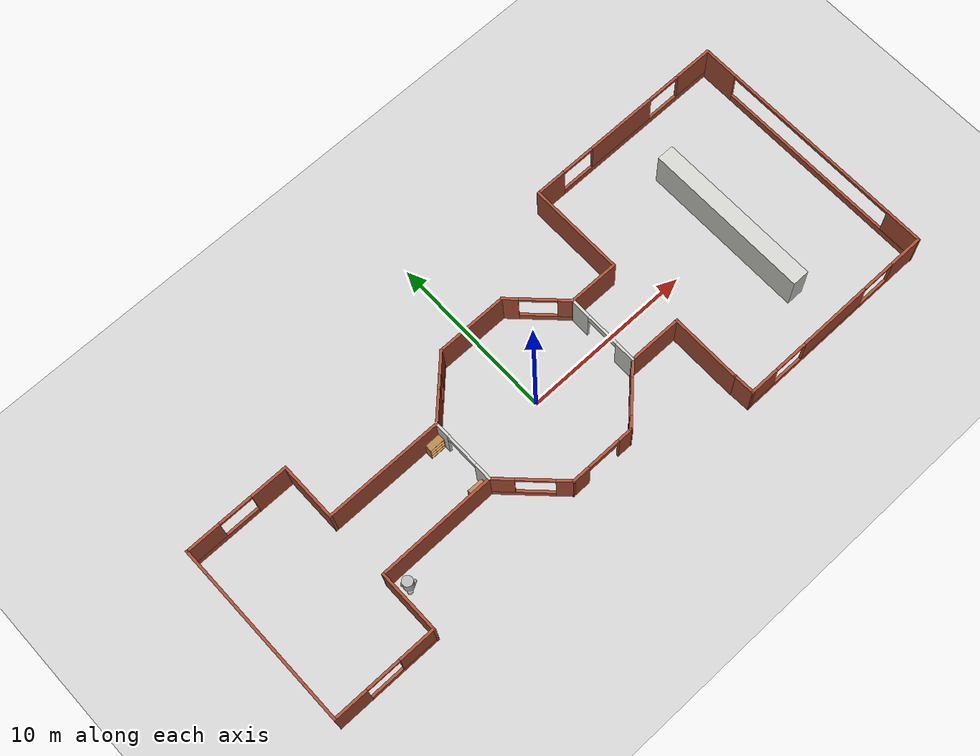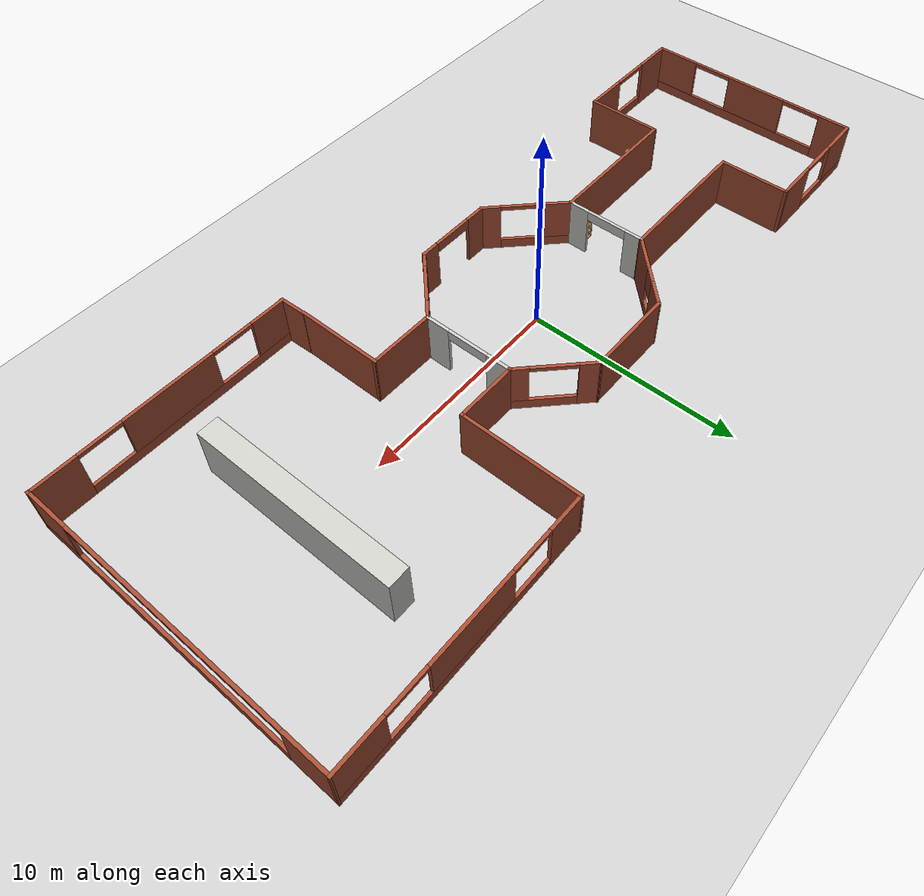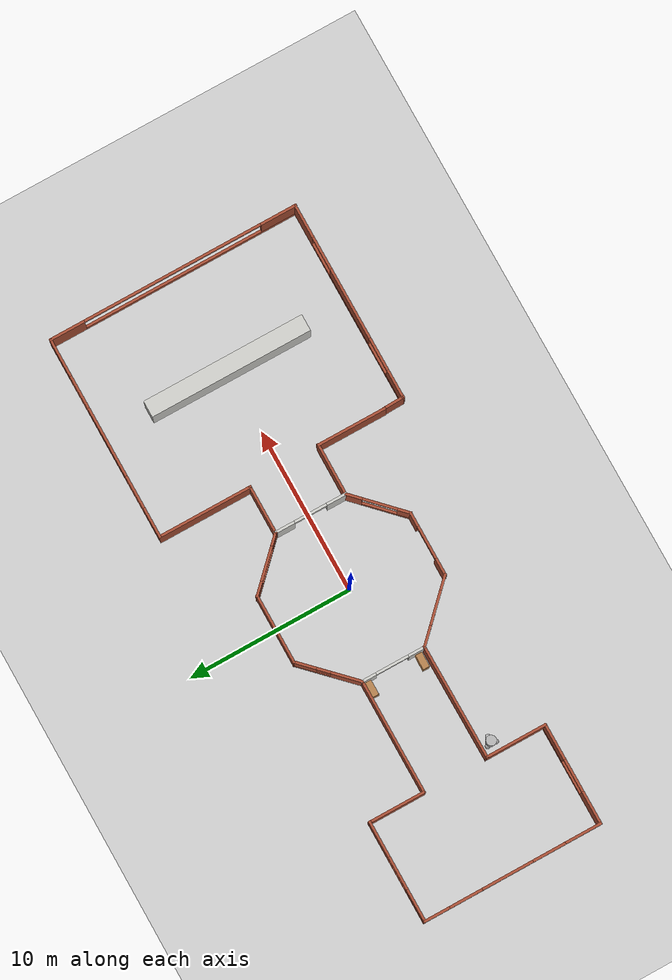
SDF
<sdf version="1.7">
 <world name="default">
  <model name="ground_plane">
   <static>1</static>
   <link name="link">
    <collision name="collision">
     <geometry><plane><normal>0 0 1</normal><size>100 100</size></plane></geometry>
     <surface>
      <contact><collide_bitmask>65535</collide_bitmask></contact>
      <friction><ode><mu>100</mu><mu2>50</mu2></ode></friction>
     </surface>
    </collision>
    <visual name="visual">
     <cast_shadows>0</cast_shadows>
     <geometry><plane><normal>0 0 1</normal><size>100 100</size></plane></geometry>
     <material>
      <script><uri>file://media/materials/scripts/gazebo.material</uri><name>Gazebo/Grey</name></script>
     </material>
    </visual>
   </link>
  </model>
  <model name="Building">
   <pose>0.97548 0.086058 0 0 -0 0</pose>
   <link name="Wall_10">
    <pose>2.24078 -3.60079 0 0 0 -2.36445</pose>
    <visual name="Wall_10_Visual_0">
     <pose>-1.40328 0 1.25 0 -0 0</pose>
     <geometry><box><size>1.01679 0.15 2.5</size></box></geometry>
     <material>
      <script><uri>file://media/materials/scripts/gazebo.material</uri><name>Gazebo/Bricks</name></script>
      <ambient>0.760784 0.662745 0.627451 1</ambient>
     </material>
     <meta><layer>0</layer></meta>
    </visual>
    <collision name="Wall_10_Collision_0">
     <geometry><box><size>1.01679 0.15 2.5</size></box></geometry>
     <pose>-1.40328 0 1.25 0 -0 0</pose>
    </collision>
    <visual name="Wall_10_Visual_1">
     <pose>0.508396 0 0.25 0 -0 0</pose>
     <geometry><box><size>2.80656 0.15 0.5</size></box></geometry>
     <material>
      <script><uri>file://media/materials/scripts/gazebo.material</uri><name>Gazebo/Bricks</name></script>
      <ambient>0.760784 0.662745 0.627451 1</ambient>
     </material>
     <meta><layer>0</layer></meta>
    </visual>
    <collision name="Wall_10_Collision_1">
     <geometry><box><size>2.80656 0.15 0.5</size></box></geometry>
     <pose>0.508396 0 0.25 0 -0 0</pose>
    </collision>
    <visual name="Wall_10_Visual_2">
     <pose>1.5084 0 1.5 0 -0 0</pose>
     <geometry><box><size>0.806556 0.15 2</size></box></geometry>
     <material>
      <script><uri>file://media/materials/scripts/gazebo.material</uri><name>Gazebo/Bricks</name></script>
      <ambient>0.760784 0.662745 0.627451 1</ambient>
     </material>
     <meta><layer>0</layer></meta>
    </visual>
    <collision name="Wall_10_Collision_2">
     <geometry><box><size>0.806556 0.15 2</size></box></geometry>
     <pose>1.5084 0 1.5 0 -0 0</pose>
    </collision>
    <visual name="Wall_10_Visual_3">
     <pose>0.105118 0 2.4 0 -0 0</pose>
     <geometry><box><size>2 0.15 0.2</size></box></geometry>
     <material>
      <script><uri>file://media/materials/scripts/gazebo.material</uri><name>Gazebo/Bricks</name></script>
      <ambient>0.760784 0.662745 0.627451 1</ambient>
     </material>
     <meta><layer>0</layer></meta>
    </visual>
    <collision name="Wall_10_Collision_3">
     <geometry><box><size>2 0.15 0.2</size></box></geometry>
     <pose>0.105118 0 2.4 0 -0 0</pose>
    </collision>
   </link>
   <link name="Wall_12">
    <collision name="Wall_12_Collision">
     <geometry><box><size>7 0.15 2.5</size></box></geometry>
     <pose>0 0 1.25 0 -0 0</pose>
    </collision>
    <visual name="Wall_12_Visual">
     <pose>0 0 1.25 0 -0 0</pose>
     <geometry><box><size>7 0.15 2.5</size></box></geometry>
     <material>
      <script><uri>file://media/materials/scripts/gazebo.material</uri><name>Gazebo/Bricks</name></script>
      <ambient>0.760784 0.662745 0.627451 1</ambient>
     </material>
     <meta><layer>0</layer></meta>
    </visual>
    <pose>-9.24276 1.86039 0 0 -0 3.14159</pose>
   </link>
   <link name="Wall_13">
    <collision name="Wall_13_Collision">
     <geometry><box><size>3.5 0.15 2.5</size></box></geometry>
     <pose>0 0 1.25 0 -0 0</pose>
    </collision>
    <visual name="Wall_13_Visual">
     <pose>0 0 1.25 0 -0 0</pose>
     <geometry><box><size>3.5 0.15 2.5</size></box></geometry>
     <material>
      <script><uri>file://media/materials/scripts/gazebo.material</uri><name>Gazebo/Bricks</name></script>
      <ambient>0.760784 0.662745 0.627451 1</ambient>
     </material>
     <meta><layer>0</layer></meta>
    </visual>
    <pose>-12.6678 3.53539 0 0 -0 1.5708</pose>
   </link>
   <link name="Wall_14">
    <pose>-15.7178 5.21039 0 0 -0 3.14159</pose>
    <visual name="Wall_14_Visual_0">
     <pose>-2.01865 0 1.25 0 -0 0</pose>
     <geometry><box><size>2.2127 0.15 2.5</size></box></geometry>
     <material>
      <script><uri>file://media/materials/scripts/gazebo.material</uri><name>Gazebo/Bricks</name></script>
      <ambient>0.760784 0.662745 0.627451 1</ambient>
     </material>
     <meta><layer>0</layer></meta>
    </visual>
    <collision name="Wall_14_Collision_0">
     <geometry><box><size>2.2127 0.15 2.5</size></box></geometry>
     <pose>-2.01865 0 1.25 0 -0 0</pose>
    </collision>
    <visual name="Wall_14_Visual_1">
     <pose>1.10635 0 0.25 0 -0 0</pose>
     <geometry><box><size>4.0373 0.15 0.5</size></box></geometry>
     <material>
      <script><uri>file://media/materials/scripts/gazebo.material</uri><name>Gazebo/Bricks</name></script>
      <ambient>0.760784 0.662745 0.627451 1</ambient>
     </material>
     <meta><layer>0</layer></meta>
    </visual>
    <collision name="Wall_14_Collision_1">
     <geometry><box><size>4.0373 0.15 0.5</size></box></geometry>
     <pose>1.10635 0 0.25 0 -0 0</pose>
    </collision>
    <visual name="Wall_14_Visual_2">
     <pose>2.10635 0 1.5 0 -0 0</pose>
     <geometry><box><size>2.0373 0.15 2</size></box></geometry>
     <material>
      <script><uri>file://media/materials/scripts/gazebo.material</uri><name>Gazebo/Bricks</name></script>
      <ambient>0.760784 0.662745 0.627451 1</ambient>
     </material>
     <meta><layer>0</layer></meta>
    </visual>
    <collision name="Wall_14_Collision_2">
     <geometry><box><size>2.0373 0.15 2</size></box></geometry>
     <pose>2.10635 0 1.5 0 -0 0</pose>
    </collision>
    <visual name="Wall_14_Visual_3">
     <pose>0.0877 0 2.4 0 -0 0</pose>
     <geometry><box><size>2 0.15 0.2</size></box></geometry>
     <material>
      <script><uri>file://media/materials/scripts/gazebo.material</uri><name>Gazebo/Bricks</name></script>
      <ambient>0.760784 0.662745 0.627451 1</ambient>
     </material>
     <meta><layer>0</layer></meta>
    </visual>
    <collision name="Wall_14_Collision_3">
     <geometry><box><size>2 0.15 0.2</size></box></geometry>
     <pose>0.0877 0 2.4 0 -0 0</pose>
    </collision>
   </link>
   <link name="Wall_15">
    <pose>-18.7678 -0.214607 0 0 0 -1.5708</pose>
    <visual name="Wall_15_Visual_0">
     <pose>-4.69879 0 1.25 0 -0 0</pose>
     <geometry><box><size>1.60243 0.15 2.5</size></box></geometry>
     <material>
      <script><uri>file://media/materials/scripts/gazebo.material</uri><name>Gazebo/Bricks</name></script>
      <ambient>0.760784 0.662745 0.627451 1</ambient>
     </material>
     <meta><layer>0</layer></meta>
    </visual>
    <collision name="Wall_15_Collision_0">
     <geometry><box><size>1.60243 0.15 2.5</size></box></geometry>
     <pose>-4.69879 0 1.25 0 -0 0</pose>
    </collision>
    <visual name="Wall_15_Visual_1">
     <pose>0.801214 0 0.25 0 -0 0</pose>
     <geometry><box><size>9.39757 0.15 0.5</size></box></geometry>
     <material>
      <script><uri>file://media/materials/scripts/gazebo.material</uri><name>Gazebo/Bricks</name></script>
      <ambient>0.760784 0.662745 0.627451 1</ambient>
     </material>
     <meta><layer>0</layer></meta>
    </visual>
    <collision name="Wall_15_Collision_1">
     <geometry><box><size>9.39757 0.15 0.5</size></box></geometry>
     <pose>0.801214 0 0.25 0 -0 0</pose>
    </collision>
    <visual name="Wall_15_Visual_2">
     <pose>-0.326532 0 1.5 0 -0 0</pose>
     <geometry><box><size>3.14208 0.15 2</size></box></geometry>
     <material>
      <script><uri>file://media/materials/scripts/gazebo.material</uri><name>Gazebo/Bricks</name></script>
      <ambient>0.760784 0.662745 0.627451 1</ambient>
     </material>
     <meta><layer>0</layer></meta>
    </visual>
    <collision name="Wall_15_Collision_2">
     <geometry><box><size>3.14208 0.15 2</size></box></geometry>
     <pose>-0.326532 0 1.5 0 -0 0</pose>
    </collision>
    <visual name="Wall_15_Visual_3">
     <pose>4.37225 0 1.5 0 -0 0</pose>
     <geometry><box><size>2.25549 0.15 2</size></box></geometry>
     <material>
      <script><uri>file://media/materials/scripts/gazebo.material</uri><name>Gazebo/Bricks</name></script>
      <ambient>0.760784 0.662745 0.627451 1</ambient>
     </material>
     <meta><layer>0</layer></meta>
    </visual>
    <collision name="Wall_15_Collision_3">
     <geometry><box><size>2.25549 0.15 2</size></box></geometry>
     <pose>4.37225 0 1.5 0 -0 0</pose>
    </collision>
    <visual name="Wall_15_Visual_4">
     <pose>-2.89757 0 2.4 0 -0 0</pose>
     <geometry><box><size>2 0.15 0.2</size></box></geometry>
     <material>
      <script><uri>file://media/materials/scripts/gazebo.material</uri><name>Gazebo/Bricks</name></script>
      <ambient>0.760784 0.662745 0.627451 1</ambient>
     </material>
     <meta><layer>0</layer></meta>
    </visual>
    <collision name="Wall_15_Collision_4">
     <geometry><box><size>2 0.15 0.2</size></box></geometry>
     <pose>-2.89757 0 2.4 0 -0 0</pose>
    </collision>
    <visual name="Wall_15_Visual_5">
     <pose>2.24451 0 2.4 0 -0 0</pose>
     <geometry><box><size>2 0.15 0.2</size></box></geometry>
     <material>
      <script><uri>file://media/materials/scripts/gazebo.material</uri><name>Gazebo/Bricks</name></script>
      <ambient>0.760784 0.662745 0.627451 1</ambient>
     </material>
     <meta><layer>0</layer></meta>
    </visual>
    <collision name="Wall_15_Collision_5">
     <geometry><box><size>2 0.15 0.2</size></box></geometry>
     <pose>2.24451 0 2.4 0 -0 0</pose>
    </collision>
   </link>
   <link name="Wall_16">
    <pose>-15.7178 -5.63961 0 0 -0 0</pose>
    <visual name="Wall_16_Visual_0">
     <pose>-2.10635 0 1.25 0 -0 0</pose>
     <geometry><box><size>2.0373 0.15 2.5</size></box></geometry>
     <material>
      <script><uri>file://media/materials/scripts/gazebo.material</uri><name>Gazebo/Bricks</name></script>
      <ambient>0.760784 0.662745 0.627451 1</ambient>
     </material>
     <meta><layer>0</layer></meta>
    </visual>
    <collision name="Wall_16_Collision_0">
     <geometry><box><size>2.0373 0.15 2.5</size></box></geometry>
     <pose>-2.10635 0 1.25 0 -0 0</pose>
    </collision>
    <visual name="Wall_16_Visual_1">
     <pose>1.01865 0 0.25 0 -0 0</pose>
     <geometry><box><size>4.2127 0.15 0.5</size></box></geometry>
     <material>
      <script><uri>file://media/materials/scripts/gazebo.material</uri><name>Gazebo/Bricks</name></script>
      <ambient>0.760784 0.662745 0.627451 1</ambient>
     </material>
     <meta><layer>0</layer></meta>
    </visual>
    <collision name="Wall_16_Collision_1">
     <geometry><box><size>4.2127 0.15 0.5</size></box></geometry>
     <pose>1.01865 0 0.25 0 -0 0</pose>
    </collision>
    <visual name="Wall_16_Visual_2">
     <pose>2.01865 0 1.5 0 -0 0</pose>
     <geometry><box><size>2.2127 0.15 2</size></box></geometry>
     <material>
      <script><uri>file://media/materials/scripts/gazebo.material</uri><name>Gazebo/Bricks</name></script>
      <ambient>0.760784 0.662745 0.627451 1</ambient>
     </material>
     <meta><layer>0</layer></meta>
    </visual>
    <collision name="Wall_16_Collision_2">
     <geometry><box><size>2.2127 0.15 2</size></box></geometry>
     <pose>2.01865 0 1.5 0 -0 0</pose>
    </collision>
    <visual name="Wall_16_Visual_3">
     <pose>-0.0877 0 2.4 0 -0 0</pose>
     <geometry><box><size>2 0.15 0.2</size></box></geometry>
     <material>
      <script><uri>file://media/materials/scripts/gazebo.material</uri><name>Gazebo/Bricks</name></script>
      <ambient>0.760784 0.662745 0.627451 1</ambient>
     </material>
     <meta><layer>0</layer></meta>
    </visual>
    <collision name="Wall_16_Collision_3">
     <geometry><box><size>2 0.15 0.2</size></box></geometry>
     <pose>-0.0877 0 2.4 0 -0 0</pose>
    </collision>
   </link>
   <link name="Wall_17">
    <collision name="Wall_17_Collision">
     <geometry><box><size>3.75 0.15 2.5</size></box></geometry>
     <pose>0 0 1.25 0 -0 0</pose>
    </collision>
    <visual name="Wall_17_Visual">
     <pose>0 0 1.25 0 -0 0</pose>
     <geometry><box><size>3.75 0.15 2.5</size></box></geometry>
     <material>
      <script><uri>file://media/materials/scripts/gazebo.material</uri><name>Gazebo/Bricks</name></script>
      <ambient>0.760784 0.662745 0.627451 1</ambient>
     </material>
     <meta><layer>0</layer></meta>
    </visual>
    <pose>-12.6678 -3.83961 0 0 -0 1.5708</pose>
   </link>
   <link name="Wall_18">
    <collision name="Wall_18_Collision">
     <geometry><box><size>7.00018 0.15 2.5</size></box></geometry>
     <pose>0 0 1.25 0 -0 0</pose>
    </collision>
    <visual name="Wall_18_Visual">
     <pose>0 0 1.25 0 -0 0</pose>
     <geometry><box><size>7.00018 0.15 2.5</size></box></geometry>
     <material>
      <script><uri>file://media/materials/scripts/gazebo.material</uri><name>Gazebo/Bricks</name></script>
      <ambient>0.760784 0.662745 0.627451 1</ambient>
     </material>
     <meta><layer>0</layer></meta>
    </visual>
    <pose>-9.24276 -2.01461 0 0 -0 0.007299</pose>
   </link>
   <link name="Wall_20">
    <collision name="Wall_20_Collision">
     <geometry><box><size>3 0.15 2.5</size></box></geometry>
     <pose>0 0 1.25 0 -0 0</pose>
    </collision>
    <visual name="Wall_20_Visual">
     <pose>0 0 1.25 0 -0 0</pose>
     <geometry><box><size>3 0.15 2.5</size></box></geometry>
     <material>
      <script><uri>file://media/materials/scripts/gazebo.material</uri><name>Gazebo/Bricks</name></script>
      <ambient>0.760784 0.662745 0.627451 1</ambient>
     </material>
     <meta><layer>0</layer></meta>
    </visual>
    <pose>4.97519 2.03717 0 0 -0 0</pose>
   </link>
   <link name="Wall_21">
    <collision name="Wall_21_Collision">
     <geometry><box><size>5.75 0.15 2.5</size></box></geometry>
     <pose>0 0 1.25 0 -0 0</pose>
    </collision>
    <visual name="Wall_21_Visual">
     <pose>0 0 1.25 0 -0 0</pose>
     <geometry><box><size>5.75 0.15 2.5</size></box></geometry>
     <material>
      <script><uri>file://media/materials/scripts/gazebo.material</uri><name>Gazebo/Bricks</name></script>
      <ambient>0.760784 0.662745 0.627451 1</ambient>
     </material>
     <meta><layer>0</layer></meta>
    </visual>
    <pose>6.40019 4.83717 0 0 -0 1.5708</pose>
   </link>
   <link name="Wall_22">
    <pose>12.5752 7.63717 0 0 -0 0</pose>
    <visual name="Wall_22_Visual_0">
     <pose>-5.31867 0 1.25 0 -0 0</pose>
     <geometry><box><size>1.86265 0.15 2.5</size></box></geometry>
     <material>
      <script><uri>file://media/materials/scripts/gazebo.material</uri><name>Gazebo/Bricks</name></script>
      <ambient>0.760784 0.662745 0.627451 1</ambient>
     </material>
     <meta><layer>0</layer></meta>
    </visual>
    <collision name="Wall_22_Collision_0">
     <geometry><box><size>1.86265 0.15 2.5</size></box></geometry>
     <pose>-5.31867 0 1.25 0 -0 0</pose>
    </collision>
    <visual name="Wall_22_Visual_1">
     <pose>0.931327 0 0.25 0 -0 0</pose>
     <geometry><box><size>10.6373 0.15 0.5</size></box></geometry>
     <material>
      <script><uri>file://media/materials/scripts/gazebo.material</uri><name>Gazebo/Bricks</name></script>
      <ambient>0.760784 0.662745 0.627451 1</ambient>
     </material>
     <meta><layer>0</layer></meta>
    </visual>
    <collision name="Wall_22_Collision_1">
     <geometry><box><size>10.6373 0.15 0.5</size></box></geometry>
     <pose>0.931327 0 0.25 0 -0 0</pose>
    </collision>
    <visual name="Wall_22_Visual_2">
     <pose>-0.256624 0 1.5 0 -0 0</pose>
     <geometry><box><size>4.26144 0.15 2</size></box></geometry>
     <material>
      <script><uri>file://media/materials/scripts/gazebo.material</uri><name>Gazebo/Bricks</name></script>
      <ambient>0.760784 0.662745 0.627451 1</ambient>
     </material>
     <meta><layer>0</layer></meta>
    </visual>
    <collision name="Wall_22_Collision_2">
     <geometry><box><size>4.26144 0.15 2</size></box></geometry>
     <pose>-0.256624 0 1.5 0 -0 0</pose>
    </collision>
    <visual name="Wall_22_Visual_3">
     <pose>5.06205 0 1.5 0 -0 0</pose>
     <geometry><box><size>2.3759 0.15 2</size></box></geometry>
     <material>
      <script><uri>file://media/materials/scripts/gazebo.material</uri><name>Gazebo/Bricks</name></script>
      <ambient>0.760784 0.662745 0.627451 1</ambient>
     </material>
     <meta><layer>0</layer></meta>
    </visual>
    <collision name="Wall_22_Collision_3">
     <geometry><box><size>2.3759 0.15 2</size></box></geometry>
     <pose>5.06205 0 1.5 0 -0 0</pose>
    </collision>
    <visual name="Wall_22_Visual_4">
     <pose>-3.38734 0 2.4 0 -0 0</pose>
     <geometry><box><size>2 0.15 0.2</size></box></geometry>
     <material>
      <script><uri>file://media/materials/scripts/gazebo.material</uri><name>Gazebo/Bricks</name></script>
      <ambient>0.760784 0.662745 0.627451 1</ambient>
     </material>
     <meta><layer>0</layer></meta>
    </visual>
    <collision name="Wall_22_Collision_4">
     <geometry><box><size>2 0.15 0.2</size></box></geometry>
     <pose>-3.38734 0 2.4 0 -0 0</pose>
    </collision>
    <visual name="Wall_22_Visual_5">
     <pose>2.8741 0 2.4 0 -0 0</pose>
     <geometry><box><size>2 0.15 0.2</size></box></geometry>
     <material>
      <script><uri>file://media/materials/scripts/gazebo.material</uri><name>Gazebo/Bricks</name></script>
      <ambient>0.760784 0.662745 0.627451 1</ambient>
     </material>
     <meta><layer>0</layer></meta>
    </visual>
    <collision name="Wall_22_Collision_5">
     <geometry><box><size>2 0.15 0.2</size></box></geometry>
     <pose>2.8741 0 2.4 0 -0 0</pose>
    </collision>
   </link>
   <link name="Wall_23">
    <pose>18.7589 0.001252 0 0 0 -1.56965</pose>
    <visual name="Wall_23_Visual_0">
     <pose>-6.62578 0 1.25 0 -0 0</pose>
     <geometry><box><size>2.17028 0.15 2.5</size></box></geometry>
     <material>
      <script><uri>file://media/materials/scripts/gazebo.material</uri><name>Gazebo/Bricks</name></script>
      <ambient>0.760784 0.662745 0.627451 1</ambient>
     </material>
     <meta><layer>0</layer></meta>
    </visual>
    <collision name="Wall_23_Collision_0">
     <geometry><box><size>2.17028 0.15 2.5</size></box></geometry>
     <pose>-6.62578 0 1.25 0 -0 0</pose>
    </collision>
    <visual name="Wall_23_Visual_1">
     <pose>1.08514 0 0.25 0 -0 0</pose>
     <geometry><box><size>13.2516 0.15 0.5</size></box></geometry>
     <material>
      <script><uri>file://media/materials/scripts/gazebo.material</uri><name>Gazebo/Bricks</name></script>
      <ambient>0.760784 0.662745 0.627451 1</ambient>
     </material>
     <meta><layer>0</layer></meta>
    </visual>
    <collision name="Wall_23_Collision_1">
     <geometry><box><size>13.2516 0.15 0.5</size></box></geometry>
     <pose>1.08514 0 0.25 0 -0 0</pose>
    </collision>
    <visual name="Wall_23_Visual_2">
     <pose>6.58514 0 1.5 0 -0 0</pose>
     <geometry><box><size>2.25156 0.15 2</size></box></geometry>
     <material>
      <script><uri>file://media/materials/scripts/gazebo.material</uri><name>Gazebo/Bricks</name></script>
      <ambient>0.760784 0.662745 0.627451 1</ambient>
     </material>
     <meta><layer>0</layer></meta>
    </visual>
    <collision name="Wall_23_Collision_2">
     <geometry><box><size>2.25156 0.15 2</size></box></geometry>
     <pose>6.58514 0 1.5 0 -0 0</pose>
    </collision>
    <visual name="Wall_23_Visual_3">
     <pose>-0.040637 0 2.4 0 -0 0</pose>
     <geometry><box><size>11 0.15 0.2</size></box></geometry>
     <material>
      <script><uri>file://media/materials/scripts/gazebo.material</uri><name>Gazebo/Bricks</name></script>
      <ambient>0.760784 0.662745 0.627451 1</ambient>
     </material>
     <meta><layer>0</layer></meta>
    </visual>
    <collision name="Wall_23_Collision_3">
     <geometry><box><size>11 0.15 0.2</size></box></geometry>
     <pose>-0.040637 0 2.4 0 -0 0</pose>
    </collision>
   </link>
   <link name="Wall_24">
    <pose>12.7177 -7.61717 0 0 -0 3.14159</pose>
    <visual name="Wall_24_Visual_0">
     <pose>-5.07697 0 1.25 0 -0 0</pose>
     <geometry><box><size>2.09606 0.15 2.5</size></box></geometry>
     <material>
      <script><uri>file://media/materials/scripts/gazebo.material</uri><name>Gazebo/Bricks</name></script>
      <ambient>0.760784 0.662745 0.627451 1</ambient>
     </material>
     <meta><layer>0</layer></meta>
    </visual>
    <collision name="Wall_24_Collision_0">
     <geometry><box><size>2.09606 0.15 2.5</size></box></geometry>
     <pose>-5.07697 0 1.25 0 -0 0</pose>
    </collision>
    <visual name="Wall_24_Visual_1">
     <pose>1.04803 0 0.25 0 -0 0</pose>
     <geometry><box><size>10.1539 0.15 0.5</size></box></geometry>
     <material>
      <script><uri>file://media/materials/scripts/gazebo.material</uri><name>Gazebo/Bricks</name></script>
      <ambient>0.760784 0.662745 0.627451 1</ambient>
     </material>
     <meta><layer>0</layer></meta>
    </visual>
    <collision name="Wall_24_Collision_1">
     <geometry><box><size>10.1539 0.15 0.5</size></box></geometry>
     <pose>1.04803 0 0.25 0 -0 0</pose>
    </collision>
    <visual name="Wall_24_Visual_2">
     <pose>0.154253 0 1.5 0 -0 0</pose>
     <geometry><box><size>4.36638 0.15 2</size></box></geometry>
     <material>
      <script><uri>file://media/materials/scripts/gazebo.material</uri><name>Gazebo/Bricks</name></script>
      <ambient>0.760784 0.662745 0.627451 1</ambient>
     </material>
     <meta><layer>0</layer></meta>
    </visual>
    <collision name="Wall_24_Collision_2">
     <geometry><box><size>4.36638 0.15 2</size></box></geometry>
     <pose>0.154253 0 1.5 0 -0 0</pose>
    </collision>
    <visual name="Wall_24_Visual_3">
     <pose>5.23122 0 1.5 0 -0 0</pose>
     <geometry><box><size>1.78756 0.15 2</size></box></geometry>
     <material>
      <script><uri>file://media/materials/scripts/gazebo.material</uri><name>Gazebo/Bricks</name></script>
      <ambient>0.760784 0.662745 0.627451 1</ambient>
     </material>
     <meta><layer>0</layer></meta>
    </visual>
    <collision name="Wall_24_Collision_3">
     <geometry><box><size>1.78756 0.15 2</size></box></geometry>
     <pose>5.23122 0 1.5 0 -0 0</pose>
    </collision>
    <visual name="Wall_24_Visual_4">
     <pose>-3.02894 0 2.4 0 -0 0</pose>
     <geometry><box><size>2 0.15 0.2</size></box></geometry>
     <material>
      <script><uri>file://media/materials/scripts/gazebo.material</uri><name>Gazebo/Bricks</name></script>
      <ambient>0.760784 0.662745 0.627451 1</ambient>
     </material>
     <meta><layer>0</layer></meta>
    </visual>
    <collision name="Wall_24_Collision_4">
     <geometry><box><size>2 0.15 0.2</size></box></geometry>
     <pose>-3.02894 0 2.4 0 -0 0</pose>
    </collision>
    <visual name="Wall_24_Visual_5">
     <pose>3.33745 0 2.4 0 -0 0</pose>
     <geometry><box><size>2 0.15 0.2</size></box></geometry>
     <material>
      <script><uri>file://media/materials/scripts/gazebo.material</uri><name>Gazebo/Bricks</name></script>
      <ambient>0.760784 0.662745 0.627451 1</ambient>
     </material>
     <meta><layer>0</layer></meta>
    </visual>
    <collision name="Wall_24_Collision_5">
     <geometry><box><size>2 0.15 0.2</size></box></geometry>
     <pose>3.33745 0 2.4 0 -0 0</pose>
    </collision>
   </link>
   <link name="Wall_25">
    <collision name="Wall_25_Collision">
     <geometry><box><size>1.35756 0.15 2.5</size></box></geometry>
     <pose>0 0 1.25 0 -0 0</pose>
    </collision>
    <visual name="Wall_25_Visual">
     <pose>0 0 1.25 0 -0 0</pose>
     <geometry><box><size>1.35756 0.15 2.5</size></box></geometry>
     <material>
      <script><uri>file://media/materials/scripts/gazebo.material</uri><name>Gazebo/Bricks</name></script>
      <ambient>1 1 1 1</ambient>
     </material>
     <meta><layer>0</layer></meta>
    </visual>
    <pose>6.64644 -7.03126 0 0 -0 1.60597</pose>
   </link>
   <link name="Wall_26">
    <collision name="Wall_26_Collision">
     <geometry><box><size>4.25 0.15 2.5</size></box></geometry>
     <pose>0 0 1.25 0 -0 0</pose>
    </collision>
    <visual name="Wall_26_Visual">
     <pose>0 0 1.25 0 -0 0</pose>
     <geometry><box><size>4.25 0.15 2.5</size></box></geometry>
     <material>
      <script><uri>file://media/materials/scripts/gazebo.material</uri><name>Gazebo/Bricks</name></script>
      <ambient>0.760784 0.662745 0.627451 1</ambient>
     </material>
     <meta><layer>0</layer></meta>
    </visual>
    <pose>6.60772 -4.37785 0 0 -0 1.5708</pose>
   </link>
   <link name="Wall_27">
    <collision name="Wall_27_Collision">
     <geometry><box><size>3.22506 0.15 2.5</size></box></geometry>
     <pose>0 0 1.25 0 -0 0</pose>
    </collision>
    <visual name="Wall_27_Visual">
     <pose>0 0 1.25 0 -0 0</pose>
     <geometry><box><size>3.22506 0.15 2.5</size></box></geometry>
     <material>
      <script><uri>file://media/materials/scripts/gazebo.material</uri><name>Gazebo/Bricks</name></script>
      <ambient>0.760784 0.662745 0.627451 1</ambient>
     </material>
     <meta><layer>0</layer></meta>
    </visual>
    <pose>5.0877 -2.32034 0 0 -0 3.13671</pose>
   </link>
   <link name="Wall_29">
    <collision name="Wall_29_Collision">
     <geometry><box><size>9.85029 1 2.5</size></box></geometry>
     <pose>0 0 1.25 0 -0 0</pose>
    </collision>
    <visual name="Wall_29_Visual">
     <pose>0 0 1.25 0 -0 0</pose>
     <geometry><box><size>9.85029 1 2.5</size></box></geometry>
     <material>
      <script><uri>file://media/materials/scripts/gazebo.material</uri><name>Gazebo/CeilingTiled</name></script>
      <ambient>1 1 1 1</ambient>
     </material>
     <meta><layer>0</layer></meta>
    </visual>
    <pose>12.8254 -0.080745 0 0 -0 1.5708</pose>
   </link>
   <link name="Wall_3">
    <pose>-0.993622 -4.88875 0 0 -0 3.14159</pose>
    <visual name="Wall_3_Visual_0">
     <pose>-1.54485 0 1.25 0 -0 0</pose>
     <geometry><box><size>0.910304 0.15 2.5</size></box></geometry>
     <material>
      <script><uri>file://media/materials/scripts/gazebo.material</uri><name>Gazebo/Bricks</name></script>
      <ambient>0.760784 0.662745 0.627451 1</ambient>
     </material>
     <meta><layer>0</layer></meta>
    </visual>
    <collision name="Wall_3_Collision_0">
     <geometry><box><size>0.910304 0.15 2.5</size></box></geometry>
     <pose>-1.54485 0 1.25 0 -0 0</pose>
    </collision>
    <visual name="Wall_3_Visual_1">
     <pose>1.45515 0 1.25 0 -0 0</pose>
     <geometry><box><size>1.0897 0.15 2.5</size></box></geometry>
     <material>
      <script><uri>file://media/materials/scripts/gazebo.material</uri><name>Gazebo/Bricks</name></script>
      <ambient>0.760784 0.662745 0.627451 1</ambient>
     </material>
     <meta><layer>0</layer></meta>
    </visual>
    <collision name="Wall_3_Collision_1">
     <geometry><box><size>1.0897 0.15 2.5</size></box></geometry>
     <pose>1.45515 0 1.25 0 -0 0</pose>
    </collision>
    <visual name="Wall_3_Visual_2">
     <pose>-0.089696 0 2.25 0 -0 0</pose>
     <geometry><box><size>2 0.15 0.5</size></box></geometry>
     <material>
      <script><uri>file://media/materials/scripts/gazebo.material</uri><name>Gazebo/Bricks</name></script>
      <ambient>0.760784 0.662745 0.627451 1</ambient>
     </material>
     <meta><layer>0</layer></meta>
    </visual>
    <collision name="Wall_3_Collision_2">
     <geometry><box><size>2 0.15 0.5</size></box></geometry>
     <pose>-0.089696 0 2.25 0 -0 0</pose>
    </collision>
   </link>
   <link name="Wall_4">
    <pose>-4.36819 -3.43918 0 0 -0 2.35619</pose>
    <visual name="Wall_4_Visual_0">
     <pose>-1.64929 0 1.25 0 -0 0</pose>
     <geometry><box><size>0.951423 0.15 2.5</size></box></geometry>
     <material>
      <script><uri>file://media/materials/scripts/gazebo.material</uri><name>Gazebo/Bricks</name></script>
      <ambient>0.760784 0.662745 0.627451 1</ambient>
     </material>
     <meta><layer>0</layer></meta>
    </visual>
    <collision name="Wall_4_Collision_0">
     <geometry><box><size>0.951423 0.15 2.5</size></box></geometry>
     <pose>-1.64929 0 1.25 0 -0 0</pose>
    </collision>
    <visual name="Wall_4_Visual_1">
     <pose>0.475711 0 0.25 0 -0 0</pose>
     <geometry><box><size>3.29858 0.15 0.5</size></box></geometry>
     <material>
      <script><uri>file://media/materials/scripts/gazebo.material</uri><name>Gazebo/Bricks</name></script>
      <ambient>0.760784 0.662745 0.627451 1</ambient>
     </material>
     <meta><layer>0</layer></meta>
    </visual>
    <collision name="Wall_4_Collision_1">
     <geometry><box><size>3.29858 0.15 0.5</size></box></geometry>
     <pose>0.475711 0 0.25 0 -0 0</pose>
    </collision>
    <visual name="Wall_4_Visual_2">
     <pose>1.47571 0 1.5 0 -0 0</pose>
     <geometry><box><size>1.29858 0.15 2</size></box></geometry>
     <material>
      <script><uri>file://media/materials/scripts/gazebo.material</uri><name>Gazebo/Bricks</name></script>
      <ambient>0.760784 0.662745 0.627451 1</ambient>
     </material>
     <meta><layer>0</layer></meta>
    </visual>
    <collision name="Wall_4_Collision_2">
     <geometry><box><size>1.29858 0.15 2</size></box></geometry>
     <pose>1.47571 0 1.5 0 -0 0</pose>
    </collision>
    <visual name="Wall_4_Visual_3">
     <pose>-0.173577 0 2.4 0 -0 0</pose>
     <geometry><box><size>2 0.15 0.2</size></box></geometry>
     <material>
      <script><uri>file://media/materials/scripts/gazebo.material</uri><name>Gazebo/Bricks</name></script>
      <ambient>0.760784 0.662745 0.627451 1</ambient>
     </material>
     <meta><layer>0</layer></meta>
    </visual>
    <collision name="Wall_4_Collision_3">
     <geometry><box><size>2 0.15 0.2</size></box></geometry>
     <pose>-0.173577 0 2.4 0 -0 0</pose>
    </collision>
   </link>
   <link name="Wall_5">
    <pose>-5.81776 -0.064607 0 0 -0 1.5708</pose>
    <visual name="Wall_5_Visual_0">
     <pose>-1.4642 0 1.25 0 -0 0</pose>
     <geometry><box><size>1.07159 0.15 2.5</size></box></geometry>
     <material>
      <script><uri>file://media/materials/scripts/gazebo.material</uri><name>Gazebo/CeilingTiled</name></script>
      <ambient>1 1 1 1</ambient>
     </material>
     <meta><layer>0</layer></meta>
    </visual>
    <collision name="Wall_5_Collision_0">
     <geometry><box><size>1.07159 0.15 2.5</size></box></geometry>
     <pose>-1.4642 0 1.25 0 -0 0</pose>
    </collision>
    <visual name="Wall_5_Visual_1">
     <pose>1.5358 0 1.25 0 -0 0</pose>
     <geometry><box><size>0.928408 0.15 2.5</size></box></geometry>
     <material>
      <script><uri>file://media/materials/scripts/gazebo.material</uri><name>Gazebo/CeilingTiled</name></script>
      <ambient>1 1 1 1</ambient>
     </material>
     <meta><layer>0</layer></meta>
    </visual>
    <collision name="Wall_5_Collision_1">
     <geometry><box><size>0.928408 0.15 2.5</size></box></geometry>
     <pose>1.5358 0 1.25 0 -0 0</pose>
    </collision>
    <visual name="Wall_5_Visual_2">
     <pose>0.071592 0 2.25 0 -0 0</pose>
     <geometry><box><size>2 0.15 0.5</size></box></geometry>
     <material>
      <script><uri>file://media/materials/scripts/gazebo.material</uri><name>Gazebo/CeilingTiled</name></script>
      <ambient>1 1 1 1</ambient>
     </material>
     <meta><layer>0</layer></meta>
    </visual>
    <collision name="Wall_5_Collision_2">
     <geometry><box><size>2 0.15 0.5</size></box></geometry>
     <pose>0.071592 0 2.25 0 -0 0</pose>
    </collision>
   </link>
   <link name="Wall_6">
    <pose>-4.45658 3.22157 0 0 -0 0.785398</pose>
    <visual name="Wall_6_Visual_0">
     <pose>-1.07429 0 1.25 0 -0 0</pose>
     <geometry><box><size>1.85142 0.15 2.5</size></box></geometry>
     <material>
      <script><uri>file://media/materials/scripts/gazebo.material</uri><name>Gazebo/Bricks</name></script>
      <ambient>0.760784 0.662745 0.627451 1</ambient>
     </material>
     <meta><layer>0</layer></meta>
    </visual>
    <collision name="Wall_6_Collision_0">
     <geometry><box><size>1.85142 0.15 2.5</size></box></geometry>
     <pose>-1.07429 0 1.25 0 -0 0</pose>
    </collision>
    <visual name="Wall_6_Visual_1">
     <pose>0.925708 0 0.25 0 -0 0</pose>
     <geometry><box><size>2.14859 0.15 0.5</size></box></geometry>
     <material>
      <script><uri>file://media/materials/scripts/gazebo.material</uri><name>Gazebo/Bricks</name></script>
      <ambient>0.760784 0.662745 0.627451 1</ambient>
     </material>
     <meta><layer>0</layer></meta>
    </visual>
    <collision name="Wall_6_Collision_1">
     <geometry><box><size>2.14859 0.15 0.5</size></box></geometry>
     <pose>0.925708 0 0.25 0 -0 0</pose>
    </collision>
    <visual name="Wall_6_Visual_2">
     <pose>1.32571 0 1.5 0 -0 0</pose>
     <geometry><box><size>1.34858 0.15 2</size></box></geometry>
     <material>
      <script><uri>file://media/materials/scripts/gazebo.material</uri><name>Gazebo/Bricks</name></script>
      <ambient>0.760784 0.662745 0.627451 1</ambient>
     </material>
     <meta><layer>0</layer></meta>
    </visual>
    <collision name="Wall_6_Collision_2">
     <geometry><box><size>1.34858 0.15 2</size></box></geometry>
     <pose>1.32571 0 1.5 0 -0 0</pose>
    </collision>
    <visual name="Wall_6_Visual_3">
     <pose>0.251415 0 1.9 0 -0 0</pose>
     <geometry><box><size>0.8 0.15 1.2</size></box></geometry>
     <material>
      <script><uri>file://media/materials/scripts/gazebo.material</uri><name>Gazebo/Bricks</name></script>
      <ambient>0.760784 0.662745 0.627451 1</ambient>
     </material>
     <meta><layer>0</layer></meta>
    </visual>
    <collision name="Wall_6_Collision_3">
     <geometry><box><size>0.8 0.15 1.2</size></box></geometry>
     <pose>0.251415 0 1.9 0 -0 0</pose>
    </collision>
   </link>
   <link name="Wall_7">
    <collision name="Wall_7_Collision">
     <geometry><box><size>4.25 0.15 2.5</size></box></geometry>
     <pose>0 0 1.25 0 -0 0</pose>
    </collision>
    <visual name="Wall_7_Visual">
     <pose>0 0 1.25 0 -0 0</pose>
     <geometry><box><size>4.25 0.15 2.5</size></box></geometry>
     <material>
      <script><uri>file://media/materials/scripts/gazebo.material</uri><name>Gazebo/Bricks</name></script>
      <ambient>0.760784 0.662745 0.627451 1</ambient>
     </material>
     <meta><layer>0</layer></meta>
    </visual>
    <pose>-1.0454 4.58275 0 0 -0 0</pose>
   </link>
   <link name="Wall_8">
    <pose>2.27739 3.30996 0 0 0 -0.785398</pose>
    <visual name="Wall_8_Visual_0">
     <pose>-1.41922 0 1.25 0 -0 0</pose>
     <geometry><box><size>0.911556 0.15 2.5</size></box></geometry>
     <material>
      <script><uri>file://media/materials/scripts/gazebo.material</uri><name>Gazebo/Bricks</name></script>
      <ambient>0.760784 0.662745 0.627451 1</ambient>
     </material>
     <meta><layer>0</layer></meta>
    </visual>
    <collision name="Wall_8_Collision_0">
     <geometry><box><size>0.911556 0.15 2.5</size></box></geometry>
     <pose>-1.41922 0 1.25 0 -0 0</pose>
    </collision>
    <visual name="Wall_8_Visual_1">
     <pose>0.455778 0 0.25 0 -0 0</pose>
     <geometry><box><size>2.83844 0.15 0.5</size></box></geometry>
     <material>
      <script><uri>file://media/materials/scripts/gazebo.material</uri><name>Gazebo/Bricks</name></script>
      <ambient>0.760784 0.662745 0.627451 1</ambient>
     </material>
     <meta><layer>0</layer></meta>
    </visual>
    <collision name="Wall_8_Collision_1">
     <geometry><box><size>2.83844 0.15 0.5</size></box></geometry>
     <pose>0.455778 0 0.25 0 -0 0</pose>
    </collision>
    <visual name="Wall_8_Visual_2">
     <pose>1.45578 0 1.5 0 -0 0</pose>
     <geometry><box><size>0.838444 0.15 2</size></box></geometry>
     <material>
      <script><uri>file://media/materials/scripts/gazebo.material</uri><name>Gazebo/Bricks</name></script>
      <ambient>0.760784 0.662745 0.627451 1</ambient>
     </material>
     <meta><layer>0</layer></meta>
    </visual>
    <collision name="Wall_8_Collision_2">
     <geometry><box><size>0.838444 0.15 2</size></box></geometry>
     <pose>1.45578 0 1.5 0 -0 0</pose>
    </collision>
    <visual name="Wall_8_Visual_3">
     <pose>0.036556 0 2.4 0 -0 0</pose>
     <geometry><box><size>2 0.15 0.2</size></box></geometry>
     <material>
      <script><uri>file://media/materials/scripts/gazebo.material</uri><name>Gazebo/Bricks</name></script>
      <ambient>0.760784 0.662745 0.627451 1</ambient>
     </material>
     <meta><layer>0</layer></meta>
    </visual>
    <collision name="Wall_8_Collision_3">
     <geometry><box><size>2 0.15 0.2</size></box></geometry>
     <pose>0.036556 0 2.4 0 -0 0</pose>
    </collision>
   </link>
   <link name="Wall_9">
    <pose>3.55019 -0.13783 0 0 0 -1.5708</pose>
    <visual name="Wall_9_Visual_0">
     <pose>-1.62745 0 1.25 0 -0 0</pose>
     <geometry><box><size>1.2451 0.15 2.5</size></box></geometry>
     <material>
      <script><uri>file://media/materials/scripts/gazebo.material</uri><name>Gazebo/CeilingTiled</name></script>
      <ambient>1 1 1 1</ambient>
     </material>
     <meta><layer>0</layer></meta>
    </visual>
    <collision name="Wall_9_Collision_0">
     <geometry><box><size>1.2451 0.15 2.5</size></box></geometry>
     <pose>-1.62745 0 1.25 0 -0 0</pose>
    </collision>
    <visual name="Wall_9_Visual_1">
     <pose>1.62255 0 1.25 0 -0 0</pose>
     <geometry><box><size>1.2549 0.15 2.5</size></box></geometry>
     <material>
      <script><uri>file://media/materials/scripts/gazebo.material</uri><name>Gazebo/CeilingTiled</name></script>
      <ambient>1 1 1 1</ambient>
     </material>
     <meta><layer>0</layer></meta>
    </visual>
    <collision name="Wall_9_Collision_1">
     <geometry><box><size>1.2549 0.15 2.5</size></box></geometry>
     <pose>1.62255 0 1.25 0 -0 0</pose>
    </collision>
    <visual name="Wall_9_Visual_2">
     <pose>-0.004895 0 2.25 0 -0 0</pose>
     <geometry><box><size>2 0.15 0.5</size></box></geometry>
     <material>
      <script><uri>file://media/materials/scripts/gazebo.material</uri><name>Gazebo/CeilingTiled</name></script>
      <ambient>1 1 1 1</ambient>
     </material>
     <meta><layer>0</layer></meta>
    </visual>
    <collision name="Wall_9_Collision_2">
     <geometry><box><size>2 0.15 0.5</size></box></geometry>
     <pose>-0.004895 0 2.25 0 -0 0</pose>
    </collision>
   </link>
   <static>1</static>
  </model>
  <model name="bookshelf">
   <static>1</static>
   <link name="link">
    <inertial><mass>1</mass></inertial>
    <collision name="back">
     <pose>0 0.005 0.6 0 -0 0</pose>
     <geometry><box><size>0.9 0.01 1.2</size></box></geometry>
    </collision>
    <visual name="visual1">
     <pose>0 0.005 0.6 0 -0 0</pose>
     <geometry><box><size>0.9 0.01 1.2</size></box></geometry>
     <material>
      <script><uri>file://media/materials/scripts/gazebo.material</uri><name>Gazebo/Wood</name></script>
     </material>
    </visual>
    <collision name="left_side">
     <pose>0.45 -0.195 0.6 0 -0 0</pose>
     <geometry><box><size>0.02 0.4 1.2</size></box></geometry>
    </collision>
    <visual name="visual2">
     <pose>0.45 -0.195 0.6 0 -0 0</pose>
     <geometry><box><size>0.02 0.4 1.2</size></box></geometry>
     <material>
      <script><uri>file://media/materials/scripts/gazebo.material</uri><name>Gazebo/Wood</name></script>
     </material>
    </visual>
    <collision name="right_side">
     <pose>-0.45 -0.195 0.6 0 -0 0</pose>
     <geometry><box><size>0.02 0.4 1.2</size></box></geometry>
    </collision>
    <visual name="visual3">
     <pose>-0.45 -0.195 0.6 0 -0 0</pose>
     <geometry><box><size>0.02 0.4 1.2</size></box></geometry>
     <material>
      <script><uri>file://media/materials/scripts/gazebo.material</uri><name>Gazebo/Wood</name></script>
     </material>
    </visual>
    <collision name="bottom">
     <pose>0 -0.195 0.03 0 -0 0</pose>
     <geometry><box><size>0.88 0.4 0.06</size></box></geometry>
    </collision>
    <visual name="visual4">
     <pose>0 -0.195 0.03 0 -0 0</pose>
     <geometry><box><size>0.88 0.4 0.06</size></box></geometry>
     <material>
      <script><uri>file://media/materials/scripts/gazebo.material</uri><name>Gazebo/Wood</name></script>
     </material>
    </visual>
    <collision name="top">
     <pose>0 -0.195 1.19 0 -0 0</pose>
     <geometry><box><size>0.88 0.4 0.02</size></box></geometry>
    </collision>
    <visual name="visual5">
     <pose>0 -0.195 1.19 0 -0 0</pose>
     <geometry><box><size>0.88 0.4 0.02</size></box></geometry>
     <material>
      <script><uri>file://media/materials/scripts/gazebo.material</uri><name>Gazebo/Wood</name></script>
     </material>
    </visual>
    <collision name="low_shelf">
     <pose>0 -0.195 0.43 0 -0 0</pose>
     <geometry><box><size>0.88 0.4 0.02</size></box></geometry>
    </collision>
    <visual name="visual6">
     <pose>0 -0.195 0.43 0 -0 0</pose>
     <geometry><box><size>0.88 0.4 0.02</size></box></geometry>
     <material>
      <script><uri>file://media/materials/scripts/gazebo.material</uri><name>Gazebo/Wood</name></script>
     </material>
    </visual>
    <collision name="high_shelf">
     <pose>0 -0.195 0.8 0 -0 0</pose>
     <geometry><box><size>0.88 0.4 0.02</size></box></geometry>
    </collision>
    <visual name="visual7">
     <pose>0 -0.195 0.8 0 -0 0</pose>
     <geometry><box><size>0.88 0.4 0.02</size></box></geometry>
     <material>
      <script><uri>file://media/materials/scripts/gazebo.material</uri><name>Gazebo/Wood</name></script>
     </material>
    </visual>
   </link>
   <pose>-5.36029 1.83069 0 0 -0 0</pose>
  </model>
  <model name="bookshelf_0">
   <static>1</static>
   <link name="link">
    <inertial><mass>1</mass></inertial>
    <collision name="back">
     <pose>0 0.005 0.6 0 -0 0</pose>
     <geometry><box><size>0.9 0.01 1.2</size></box></geometry>
    </collision>
    <visual name="visual1">
     <pose>0 0.005 0.6 0 -0 0</pose>
     <geometry><box><size>0.9 0.01 1.2</size></box></geometry>
     <material>
      <script><uri>file://media/materials/scripts/gazebo.material</uri><name>Gazebo/Wood</name></script>
     </material>
    </visual>
    <collision name="left_side">
     <pose>0.45 -0.195 0.6 0 -0 0</pose>
     <geometry><box><size>0.02 0.4 1.2</size></box></geometry>
    </collision>
    <visual name="visual2">
     <pose>0.45 -0.195 0.6 0 -0 0</pose>
     <geometry><box><size>0.02 0.4 1.2</size></box></geometry>
     <material>
      <script><uri>file://media/materials/scripts/gazebo.material</uri><name>Gazebo/Wood</name></script>
     </material>
    </visual>
    <collision name="right_side">
     <pose>-0.45 -0.195 0.6 0 -0 0</pose>
     <geometry><box><size>0.02 0.4 1.2</size></box></geometry>
    </collision>
    <visual name="visual3">
     <pose>-0.45 -0.195 0.6 0 -0 0</pose>
     <geometry><box><size>0.02 0.4 1.2</size></box></geometry>
     <material>
      <script><uri>file://media/materials/scripts/gazebo.material</uri><name>Gazebo/Wood</name></script>
     </material>
    </visual>
    <collision name="bottom">
     <pose>0 -0.195 0.03 0 -0 0</pose>
     <geometry><box><size>0.88 0.4 0.06</size></box></geometry>
    </collision>
    <visual name="visual4">
     <pose>0 -0.195 0.03 0 -0 0</pose>
     <geometry><box><size>0.88 0.4 0.06</size></box></geometry>
     <material>
      <script><uri>file://media/materials/scripts/gazebo.material</uri><name>Gazebo/Wood</name></script>
     </material>
    </visual>
    <collision name="top">
     <pose>0 -0.195 1.19 0 -0 0</pose>
     <geometry><box><size>0.88 0.4 0.02</size></box></geometry>
    </collision>
    <visual name="visual5">
     <pose>0 -0.195 1.19 0 -0 0</pose>
     <geometry><box><size>0.88 0.4 0.02</size></box></geometry>
     <material>
      <script><uri>file://media/materials/scripts/gazebo.material</uri><name>Gazebo/Wood</name></script>
     </material>
    </visual>
    <collision name="low_shelf">
     <pose>0 -0.195 0.43 0 -0 0</pose>
     <geometry><box><size>0.88 0.4 0.02</size></box></geometry>
    </collision>
    <visual name="visual6">
     <pose>0 -0.195 0.43 0 -0 0</pose>
     <geometry><box><size>0.88 0.4 0.02</size></box></geometry>
     <material>
      <script><uri>file://media/materials/scripts/gazebo.material</uri><name>Gazebo/Wood</name></script>
     </material>
    </visual>
    <collision name="high_shelf">
     <pose>0 -0.195 0.8 0 -0 0</pose>
     <geometry><box><size>0.88 0.4 0.02</size></box></geometry>
    </collision>
    <visual name="visual7">
     <pose>0 -0.195 0.8 0 -0 0</pose>
     <geometry><box><size>0.88 0.4 0.02</size></box></geometry>
     <material>
      <script><uri>file://media/materials/scripts/gazebo.material</uri><name>Gazebo/Wood</name></script>
     </material>
    </visual>
   </link>
   <pose>-5.37619 -1.71068 0 0 -0 3.13059</pose>
  </model>
  <model name="HumanoidRobot_0">
   <static>0</static>
   <link name="body">
    <pose>0 0 0.5 0 -0 0</pose>
    <visual name="body_visual">
     <geometry><cylinder><radius>0.3</radius><length>1</length></cylinder></geometry>
     <material><ambient>0.7 0.7 0.7 1</ambient></material>
    </visual>
    <collision name="body_collision">
     <geometry><cylinder><radius>0.3</radius><length>1</length></cylinder></geometry>
    </collision>
    <inertial>
     <inertia><ixx>1</ixx><ixy>0</ixy><ixz>0</ixz><iyy>1</iyy><iyz>0</iyz><izz>1</izz></inertia>
     <mass>1</mass>
    </inertial>
   </link>
   <link name="front_ball">
    <pose>0.3 0 0 0 -0 0</pose>
    <visual name="front_ball_visual"><geometry><sphere><radius>0.15</radius></sphere></geometry></visual>
    <collision name="front_ball_collision"><geometry><sphere><radius>0.15</radius></sphere></geometry></collision>
    <inertial>
     <inertia><ixx>1</ixx><ixy>0</ixy><ixz>0</ixz><iyy>1</iyy><iyz>0</iyz><izz>1</izz></inertia>
     <mass>1</mass>
    </inertial>
   </link>
   <joint name="front_ball_joint" type="fixed">
    <parent>body</parent>
    <child>front_ball</child>
    <pose>0.3 0 0 0 -0 0</pose>
   </joint>
   <link name="left_ball">
    <pose>-0.15 0.26 0 0 -0 0</pose>
    <visual name="left_ball_visual"><geometry><sphere><radius>0.15</radius></sphere></geometry></visual>
    <collision name="left_ball_collision"><geometry><sphere><radius>0.15</radius></sphere></geometry></collision>
    <inertial>
     <inertia><ixx>1</ixx><ixy>0</ixy><ixz>0</ixz><iyy>1</iyy><iyz>0</iyz><izz>1</izz></inertia>
     <mass>1</mass>
    </inertial>
   </link>
   <joint name="left_ball_joint" type="fixed">
    <parent>body</parent>
    <child>left_ball</child>
    <pose>-0.15 0.26 0 0 -0 0</pose>
   </joint>
   <link name="right_ball">
    <pose>-0.15 -0.26 0 0 -0 0</pose>
    <visual name="right_ball_visual"><geometry><sphere><radius>0.15</radius></sphere></geometry></visual>
    <collision name="right_ball_collision"><geometry><sphere><radius>0.15</radius></sphere></geometry></collision>
    <inertial>
     <inertia><ixx>1</ixx><ixy>0</ixy><ixz>0</ixz><iyy>1</iyy><iyz>0</iyz><izz>1</izz></inertia>
     <mass>1</mass>
    </inertial>
   </link>
   <joint name="right_ball_joint" type="fixed">
    <parent>body</parent>
    <child>right_ball</child>
    <pose>-0.15 -0.26 0 0 -0 0</pose>
   </joint>
   <joint name="front_left_joint" type="fixed"><parent>front_ball</parent><child>left_ball</child></joint>
   <joint name="front_right_joint" type="fixed"><parent>front_ball</parent><child>right_ball</child></joint>
   <joint name="left_right_joint" type="fixed"><parent>left_ball</parent><child>right_ball</child></joint>
   <pose>-10.9671 -2.66738 0.15 -1e-06 -1e-06 -0.00022</pose>
  </model>
 </world>
</sdf>
